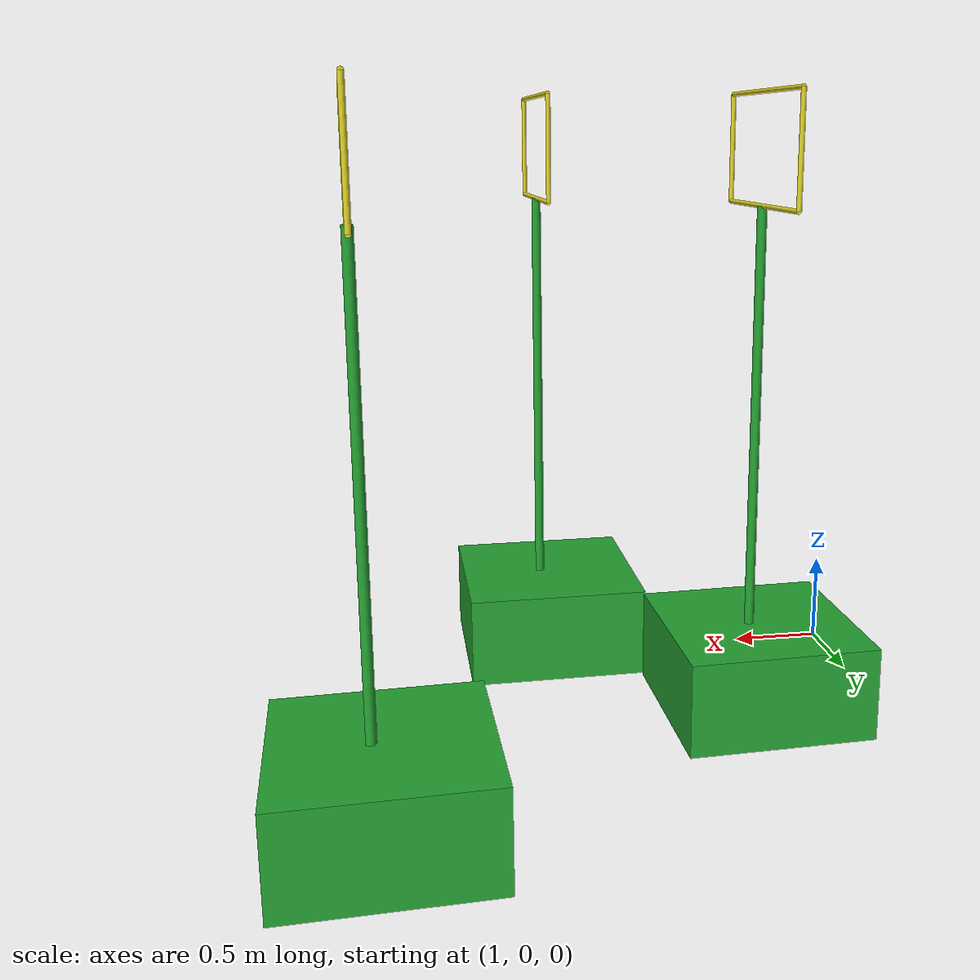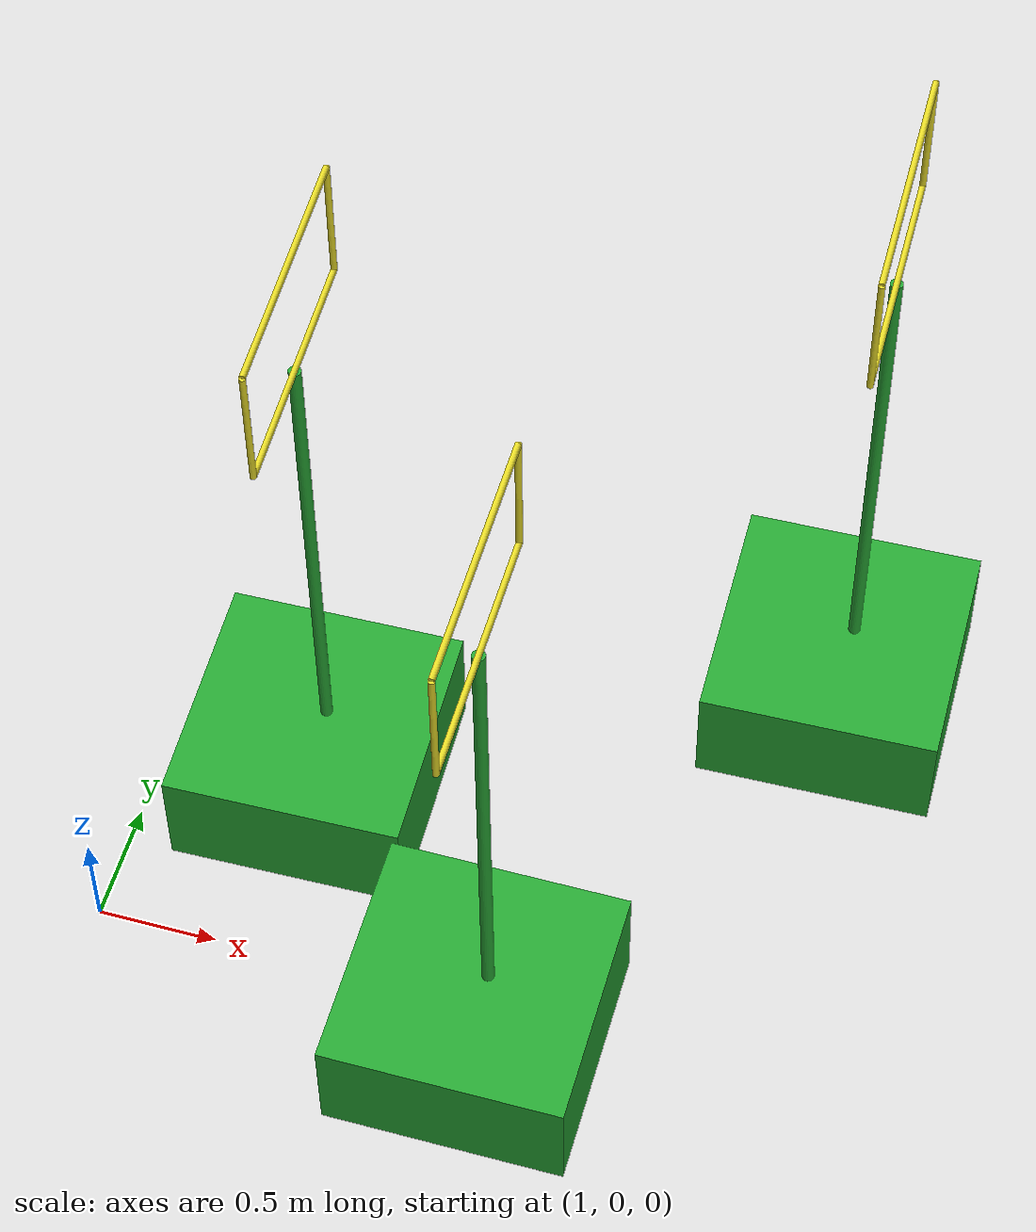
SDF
<sdf version="1.6">
 <world name="vrc_task_1">
  <model name="flipkart_hoop">
   <link name="link_0">
    <inertial>
     <mass>0.530306</mass>
     <inertia>
      <ixx>0.0566207</ixx>
      <ixy>0</ixy>
      <ixz>0</ixz>
      <iyy>0.0566207</iyy>
      <iyz>0</iyz>
      <izz>0.0883844</izz>
     </inertia>
    </inertial>
    <pose>0.141833 0.667401 -1.68595 0 -0 0</pose>
    <visual name="visual">
     <geometry><box><size>1 1 0.5</size></box></geometry>
     <material>
      <lighting>1</lighting>
      <script><uri>file://media/materials/scripts/gazebo.material</uri><name>Gazebo/Green</name></script>
      <shader type="pixel"/>
      <emissive>0 0 0 1</emissive>
     </material>
    </visual>
    <collision name="collision">
     <geometry><box><size>1 1 0.5</size></box></geometry>
     <surface>
      <friction>
       <ode><mu>1</mu><mu2>1</mu2><fdir1>0 0 0</fdir1><slip1>0</slip1><slip2>0</slip2></ode>
       <torsional>
        <coefficient>1</coefficient>
        <patch_radius>0</patch_radius>
        <surface_radius>0</surface_radius>
        <use_patch_radius>1</use_patch_radius>
        <ode><slip>0</slip></ode>
       </torsional>
      </friction>
      <bounce><restitution_coefficient>0</restitution_coefficient><threshold>1e+06</threshold></bounce>
      <contact>
       <collide_without_contact>0</collide_without_contact>
       <collide_without_contact_bitmask>1</collide_without_contact_bitmask>
       <collide_bitmask>1</collide_bitmask>
       <ode>
        <soft_cfm>0</soft_cfm>
        <soft_erp>0.2</soft_erp>
        <kp>1e+13</kp>
        <kd>1</kd>
        <max_vel>0.01</max_vel>
        <min_depth>0</min_depth>
       </ode>
       <bullet>
        <split_impulse>1</split_impulse>
        <split_impulse_penetration_threshold>-0.01</split_impulse_penetration_threshold>
        <soft_cfm>0</soft_cfm>
        <soft_erp>0.2</soft_erp>
        <kp>1e+13</kp>
        <kd>1</kd>
       </bullet>
      </contact>
     </surface>
    </collision>
   </link>
   <link name="link_1">
    <inertial>
     <mass>0.25</mass>
     <inertia>
      <ixx>0.130247</ixx>
      <ixy>0</ixy>
      <ixz>0</ixz>
      <iyy>0.130247</iyy>
      <iyz>0</iyz>
      <izz>7.813e-05</izz>
     </inertia>
    </inertial>
    <pose>0.122412 0.714194 -0.478486 0 -0 0</pose>
    <visual name="visual">
     <geometry><cylinder><radius>0.025</radius><length>2.5</length></cylinder></geometry>
     <material>
      <lighting>1</lighting>
      <script><uri>file://media/materials/scripts/gazebo.material</uri><name>Gazebo/Green</name></script>
      <shader type="pixel"/>
      <emissive>0 0 0 1</emissive>
     </material>
    </visual>
    <collision name="collision">
     <geometry><cylinder><radius>0.025</radius><length>2.5</length></cylinder></geometry>
     <surface>
      <friction>
       <ode><mu>1</mu><mu2>1</mu2><fdir1>0 0 0</fdir1><slip1>0</slip1><slip2>0</slip2></ode>
       <torsional>
        <coefficient>1</coefficient>
        <patch_radius>0</patch_radius>
        <surface_radius>0</surface_radius>
        <use_patch_radius>1</use_patch_radius>
        <ode><slip>0</slip></ode>
       </torsional>
      </friction>
      <bounce><restitution_coefficient>0</restitution_coefficient><threshold>1e+06</threshold></bounce>
      <contact>
       <collide_without_contact>0</collide_without_contact>
       <collide_without_contact_bitmask>1</collide_without_contact_bitmask>
       <collide_bitmask>1</collide_bitmask>
       <ode>
        <soft_cfm>0</soft_cfm>
        <soft_erp>0.2</soft_erp>
        <kp>1e+13</kp>
        <kd>1</kd>
        <max_vel>0.01</max_vel>
        <min_depth>0</min_depth>
       </ode>
       <bullet>
        <split_impulse>1</split_impulse>
        <split_impulse_penetration_threshold>-0.01</split_impulse_penetration_threshold>
        <soft_cfm>0</soft_cfm>
        <soft_erp>0.2</soft_erp>
        <kp>1e+13</kp>
        <kd>1</kd>
       </bullet>
      </contact>
     </surface>
    </collision>
   </link>
   <link name="link_2">
    <inertial>
     <mass>0.05</mass>
     <inertia>
      <ixx>0.00416862</ixx>
      <ixy>0</ixy>
      <ixz>0</ixz>
      <iyy>0.00416862</iyy>
      <iyz>0</iyz>
      <izz>3.91e-06</izz>
     </inertia>
    </inertial>
    <pose>0.122412 0.714194 1.32141 1.57 -0 1.57</pose>
    <visual name="visual">
     <geometry><cylinder><radius>0.0125</radius><length>1</length></cylinder></geometry>
     <material>
      <lighting>1</lighting>
      <script><uri>file://media/materials/scripts/gazebo.material</uri><name>Gazebo/Yellow</name></script>
      <shader type="pixel"/>
      <emissive>0 0 0 1</emissive>
     </material>
    </visual>
    <collision name="collision">
     <geometry><cylinder><radius>0.0125</radius><length>1</length></cylinder></geometry>
     <surface>
      <friction>
       <ode><mu>1</mu><mu2>1</mu2><fdir1>0 0 0</fdir1><slip1>0</slip1><slip2>0</slip2></ode>
       <torsional>
        <coefficient>1</coefficient>
        <patch_radius>0</patch_radius>
        <surface_radius>0</surface_radius>
        <use_patch_radius>1</use_patch_radius>
        <ode><slip>0</slip></ode>
       </torsional>
      </friction>
      <bounce><restitution_coefficient>0</restitution_coefficient><threshold>1e+06</threshold></bounce>
      <contact>
       <collide_without_contact>0</collide_without_contact>
       <collide_without_contact_bitmask>1</collide_without_contact_bitmask>
       <collide_bitmask>1</collide_bitmask>
       <ode>
        <soft_cfm>0</soft_cfm>
        <soft_erp>0.2</soft_erp>
        <kp>1e+13</kp>
        <kd>1</kd>
        <max_vel>0.01</max_vel>
        <min_depth>0</min_depth>
       </ode>
       <bullet>
        <split_impulse>1</split_impulse>
        <split_impulse_penetration_threshold>-0.01</split_impulse_penetration_threshold>
        <soft_cfm>0</soft_cfm>
        <soft_erp>0.2</soft_erp>
        <kp>1e+13</kp>
        <kd>1</kd>
       </bullet>
      </contact>
     </surface>
    </collision>
   </link>
   <link name="link_2_clone_0">
    <inertial>
     <mass>0.05</mass>
     <inertia>
      <ixx>0.00416862</ixx>
      <ixy>0</ixy>
      <ixz>0</ixz>
      <iyy>0.00416862</iyy>
      <iyz>0</iyz>
      <izz>3.91e-06</izz>
     </inertia>
    </inertial>
    <pose>0.122412 0.714194 0.771414 1.57 -0 1.57</pose>
    <visual name="visual">
     <geometry><cylinder><radius>0.0125</radius><length>1</length></cylinder></geometry>
     <material>
      <lighting>1</lighting>
      <script><uri>file://media/materials/scripts/gazebo.material</uri><name>Gazebo/Yellow</name></script>
      <shader type="pixel"/>
      <emissive>0 0 0 1</emissive>
     </material>
    </visual>
    <collision name="collision">
     <geometry><cylinder><radius>0.0125</radius><length>1</length></cylinder></geometry>
     <surface>
      <friction>
       <ode><mu>1</mu><mu2>1</mu2><fdir1>0 0 0</fdir1><slip1>0</slip1><slip2>0</slip2></ode>
       <torsional>
        <coefficient>1</coefficient>
        <patch_radius>0</patch_radius>
        <surface_radius>0</surface_radius>
        <use_patch_radius>1</use_patch_radius>
        <ode><slip>0</slip></ode>
       </torsional>
      </friction>
      <bounce><restitution_coefficient>0</restitution_coefficient><threshold>1e+06</threshold></bounce>
      <contact>
       <collide_without_contact>0</collide_without_contact>
       <collide_without_contact_bitmask>1</collide_without_contact_bitmask>
       <collide_bitmask>1</collide_bitmask>
       <ode>
        <soft_cfm>0</soft_cfm>
        <soft_erp>0.2</soft_erp>
        <kp>1e+13</kp>
        <kd>1</kd>
        <max_vel>0.01</max_vel>
        <min_depth>0</min_depth>
       </ode>
       <bullet>
        <split_impulse>1</split_impulse>
        <split_impulse_penetration_threshold>-0.01</split_impulse_penetration_threshold>
        <soft_cfm>0</soft_cfm>
        <soft_erp>0.2</soft_erp>
        <kp>1e+13</kp>
        <kd>1</kd>
       </bullet>
      </contact>
     </surface>
    </collision>
   </link>
   <link name="link_3_clone_clone">
    <inertial>
     <mass>0.025</mass>
     <inertia>
      <ixx>0.00063118</ixx>
      <ixy>0</ixy>
      <ixz>0</ixz>
      <iyy>0.00063118</iyy>
      <iyz>0</iyz>
      <izz>1.95e-06</izz>
     </inertia>
    </inertial>
    <pose>-0.377588 0.714194 1.04641 8e-06 -0 8e-06</pose>
    <visual name="visual">
     <geometry><cylinder><radius>0.0125</radius><length>0.55</length></cylinder></geometry>
     <material>
      <lighting>1</lighting>
      <script><uri>file://media/materials/scripts/gazebo.material</uri><name>Gazebo/Yellow</name></script>
      <shader type="pixel"/>
      <emissive>0 0 0 1</emissive>
     </material>
    </visual>
    <collision name="collision">
     <geometry><cylinder><radius>0.0125</radius><length>0.55</length></cylinder></geometry>
     <surface>
      <friction>
       <ode><mu>1</mu><mu2>1</mu2><fdir1>0 0 0</fdir1><slip1>0</slip1><slip2>0</slip2></ode>
       <torsional>
        <coefficient>1</coefficient>
        <patch_radius>0</patch_radius>
        <surface_radius>0</surface_radius>
        <use_patch_radius>1</use_patch_radius>
        <ode><slip>0</slip></ode>
       </torsional>
      </friction>
      <bounce><restitution_coefficient>0</restitution_coefficient><threshold>1e+06</threshold></bounce>
      <contact>
       <collide_without_contact>0</collide_without_contact>
       <collide_without_contact_bitmask>1</collide_without_contact_bitmask>
       <collide_bitmask>1</collide_bitmask>
       <ode>
        <soft_cfm>0</soft_cfm>
        <soft_erp>0.2</soft_erp>
        <kp>1e+13</kp>
        <kd>1</kd>
        <max_vel>0.01</max_vel>
        <min_depth>0</min_depth>
       </ode>
       <bullet>
        <split_impulse>1</split_impulse>
        <split_impulse_penetration_threshold>-0.01</split_impulse_penetration_threshold>
        <soft_cfm>0</soft_cfm>
        <soft_erp>0.2</soft_erp>
        <kp>1e+13</kp>
        <kd>1</kd>
       </bullet>
      </contact>
     </surface>
    </collision>
   </link>
   <link name="link_3_clone_clone_clone">
    <inertial>
     <mass>0.025</mass>
     <inertia>
      <ixx>0.00063118</ixx>
      <ixy>0</ixy>
      <ixz>0</ixz>
      <iyy>0.00063118</iyy>
      <iyz>0</iyz>
      <izz>1.95e-06</izz>
     </inertia>
    </inertial>
    <pose>0.622412 0.714194 1.04641 5.7e-05 -0 5.7e-05</pose>
    <visual name="visual">
     <geometry><cylinder><radius>0.0125</radius><length>0.55</length></cylinder></geometry>
     <material>
      <lighting>1</lighting>
      <script><uri>file://media/materials/scripts/gazebo.material</uri><name>Gazebo/Yellow</name></script>
      <shader type="pixel"/>
      <emissive>0 0 0 1</emissive>
     </material>
    </visual>
    <collision name="collision">
     <geometry><cylinder><radius>0.0125</radius><length>0.55</length></cylinder></geometry>
     <surface>
      <friction>
       <ode><mu>1</mu><mu2>1</mu2><fdir1>0 0 0</fdir1><slip1>0</slip1><slip2>0</slip2></ode>
       <torsional>
        <coefficient>1</coefficient>
        <patch_radius>0</patch_radius>
        <surface_radius>0</surface_radius>
        <use_patch_radius>1</use_patch_radius>
        <ode><slip>0</slip></ode>
       </torsional>
      </friction>
      <bounce><restitution_coefficient>0</restitution_coefficient><threshold>1e+06</threshold></bounce>
      <contact>
       <collide_without_contact>0</collide_without_contact>
       <collide_without_contact_bitmask>1</collide_without_contact_bitmask>
       <collide_bitmask>1</collide_bitmask>
       <ode>
        <soft_cfm>0</soft_cfm>
        <soft_erp>0.2</soft_erp>
        <kp>1e+13</kp>
        <kd>1</kd>
        <max_vel>0.01</max_vel>
        <min_depth>0</min_depth>
       </ode>
       <bullet>
        <split_impulse>1</split_impulse>
        <split_impulse_penetration_threshold>-0.01</split_impulse_penetration_threshold>
        <soft_cfm>0</soft_cfm>
        <soft_erp>0.2</soft_erp>
        <kp>1e+13</kp>
        <kd>1</kd>
       </bullet>
      </contact>
     </surface>
    </collision>
   </link>
   <joint name="link_0_JOINT_0" type="fixed">
    <parent>link_0</parent>
    <child>link_1</child>
    <physics>
     <ode><limit><cfm>0</cfm><erp>0.2</erp></limit><suspension><cfm>0</cfm><erp>0.2</erp></suspension></ode>
    </physics>
   </joint>
   <joint name="link_1_JOINT_0" type="fixed">
    <parent>link_1</parent>
    <child>link_2_clone_0</child>
    <physics>
     <ode><limit><cfm>0</cfm><erp>0.2</erp></limit><suspension><cfm>0</cfm><erp>0.2</erp></suspension></ode>
    </physics>
   </joint>
   <joint name="link_2_JOINT_2" type="fixed">
    <parent>link_2</parent>
    <child>link_3_clone_clone_clone</child>
    <physics>
     <ode><limit><cfm>0</cfm><erp>0.2</erp></limit><suspension><cfm>0</cfm><erp>0.2</erp></suspension></ode>
    </physics>
   </joint>
   <joint name="link_2_clone_0_JOINT_4" type="fixed">
    <parent>link_2_clone_0</parent>
    <child>link_3_clone_clone</child>
    <physics>
     <ode><limit><cfm>0</cfm><erp>0.2</erp></limit><suspension><cfm>0</cfm><erp>0.2</erp></suspension></ode>
    </physics>
   </joint>
   <joint name="link_3_clone_clone_JOINT_1" type="fixed">
    <parent>link_3_clone_clone</parent>
    <child>link_2</child>
    <physics>
     <ode><limit><cfm>0</cfm><erp>0.2</erp></limit><suspension><cfm>0</cfm><erp>0.2</erp></suspension></ode>
    </physics>
   </joint>
   <joint name="link_3_clone_clone_clone_JOINT_3" type="fixed">
    <parent>link_3_clone_clone_clone</parent>
    <child>link_2_clone_0</child>
    <physics>
     <ode><limit><cfm>0</cfm><erp>0.2</erp></limit><suspension><cfm>0</cfm><erp>0.2</erp></suspension></ode>
    </physics>
   </joint>
   <static>0</static>
   <pose>3.00055 2.00101 1.93595 0 -1e-05 -1.5425</pose>
  </model>
  <model name="flipkart_hoop_clone_11">
   <link name="link_0">
    <inertial>
     <mass>0.530306</mass>
     <inertia>
      <ixx>0.0566207</ixx>
      <ixy>0</ixy>
      <ixz>0</ixz>
      <iyy>0.0566207</iyy>
      <iyz>0</iyz>
      <izz>0.0883844</izz>
     </inertia>
    </inertial>
    <pose>0.141833 0.667401 -1.68595 0 -0 0</pose>
    <visual name="visual">
     <geometry><box><size>1 1 0.5</size></box></geometry>
     <material>
      <lighting>1</lighting>
      <script><uri>file://media/materials/scripts/gazebo.material</uri><name>Gazebo/Green</name></script>
      <shader type="pixel"/>
      <emissive>0 0 0 1</emissive>
     </material>
    </visual>
    <collision name="collision">
     <geometry><box><size>1 1 0.5</size></box></geometry>
     <surface>
      <friction>
       <ode><mu>1</mu><mu2>1</mu2><fdir1>0 0 0</fdir1><slip1>0</slip1><slip2>0</slip2></ode>
       <torsional>
        <coefficient>1</coefficient>
        <patch_radius>0</patch_radius>
        <surface_radius>0</surface_radius>
        <use_patch_radius>1</use_patch_radius>
        <ode><slip>0</slip></ode>
       </torsional>
      </friction>
      <bounce><restitution_coefficient>0</restitution_coefficient><threshold>1e+06</threshold></bounce>
      <contact>
       <collide_without_contact>0</collide_without_contact>
       <collide_without_contact_bitmask>1</collide_without_contact_bitmask>
       <collide_bitmask>1</collide_bitmask>
       <ode>
        <soft_cfm>0</soft_cfm>
        <soft_erp>0.2</soft_erp>
        <kp>1e+13</kp>
        <kd>1</kd>
        <max_vel>0.01</max_vel>
        <min_depth>0</min_depth>
       </ode>
       <bullet>
        <split_impulse>1</split_impulse>
        <split_impulse_penetration_threshold>-0.01</split_impulse_penetration_threshold>
        <soft_cfm>0</soft_cfm>
        <soft_erp>0.2</soft_erp>
        <kp>1e+13</kp>
        <kd>1</kd>
       </bullet>
      </contact>
     </surface>
    </collision>
   </link>
   <link name="link_1">
    <inertial>
     <mass>0.25</mass>
     <inertia>
      <ixx>0.130247</ixx>
      <ixy>0</ixy>
      <ixz>0</ixz>
      <iyy>0.130247</iyy>
      <iyz>0</iyz>
      <izz>7.813e-05</izz>
     </inertia>
    </inertial>
    <pose>0.122412 0.714194 -0.478486 0 -0 0</pose>
    <visual name="visual">
     <geometry><cylinder><radius>0.025</radius><length>2.5</length></cylinder></geometry>
     <material>
      <lighting>1</lighting>
      <script><uri>file://media/materials/scripts/gazebo.material</uri><name>Gazebo/Green</name></script>
      <shader type="pixel"/>
      <emissive>0 0 0 1</emissive>
     </material>
    </visual>
    <collision name="collision">
     <geometry><cylinder><radius>0.025</radius><length>2.5</length></cylinder></geometry>
     <surface>
      <friction>
       <ode><mu>1</mu><mu2>1</mu2><fdir1>0 0 0</fdir1><slip1>0</slip1><slip2>0</slip2></ode>
       <torsional>
        <coefficient>1</coefficient>
        <patch_radius>0</patch_radius>
        <surface_radius>0</surface_radius>
        <use_patch_radius>1</use_patch_radius>
        <ode><slip>0</slip></ode>
       </torsional>
      </friction>
      <bounce><restitution_coefficient>0</restitution_coefficient><threshold>1e+06</threshold></bounce>
      <contact>
       <collide_without_contact>0</collide_without_contact>
       <collide_without_contact_bitmask>1</collide_without_contact_bitmask>
       <collide_bitmask>1</collide_bitmask>
       <ode>
        <soft_cfm>0</soft_cfm>
        <soft_erp>0.2</soft_erp>
        <kp>1e+13</kp>
        <kd>1</kd>
        <max_vel>0.01</max_vel>
        <min_depth>0</min_depth>
       </ode>
       <bullet>
        <split_impulse>1</split_impulse>
        <split_impulse_penetration_threshold>-0.01</split_impulse_penetration_threshold>
        <soft_cfm>0</soft_cfm>
        <soft_erp>0.2</soft_erp>
        <kp>1e+13</kp>
        <kd>1</kd>
       </bullet>
      </contact>
     </surface>
    </collision>
   </link>
   <link name="link_2">
    <inertial>
     <mass>0.05</mass>
     <inertia>
      <ixx>0.00416862</ixx>
      <ixy>0</ixy>
      <ixz>0</ixz>
      <iyy>0.00416862</iyy>
      <iyz>0</iyz>
      <izz>3.91e-06</izz>
     </inertia>
    </inertial>
    <pose>0.122412 0.714194 1.32141 1.57 -0 1.57</pose>
    <visual name="visual">
     <geometry><cylinder><radius>0.0125</radius><length>1</length></cylinder></geometry>
     <material>
      <lighting>1</lighting>
      <script><uri>file://media/materials/scripts/gazebo.material</uri><name>Gazebo/Yellow</name></script>
      <shader type="pixel"/>
      <emissive>0 0 0 1</emissive>
     </material>
    </visual>
    <collision name="collision">
     <geometry><cylinder><radius>0.0125</radius><length>1</length></cylinder></geometry>
     <surface>
      <friction>
       <ode><mu>1</mu><mu2>1</mu2><fdir1>0 0 0</fdir1><slip1>0</slip1><slip2>0</slip2></ode>
       <torsional>
        <coefficient>1</coefficient>
        <patch_radius>0</patch_radius>
        <surface_radius>0</surface_radius>
        <use_patch_radius>1</use_patch_radius>
        <ode><slip>0</slip></ode>
       </torsional>
      </friction>
      <bounce><restitution_coefficient>0</restitution_coefficient><threshold>1e+06</threshold></bounce>
      <contact>
       <collide_without_contact>0</collide_without_contact>
       <collide_without_contact_bitmask>1</collide_without_contact_bitmask>
       <collide_bitmask>1</collide_bitmask>
       <ode>
        <soft_cfm>0</soft_cfm>
        <soft_erp>0.2</soft_erp>
        <kp>1e+13</kp>
        <kd>1</kd>
        <max_vel>0.01</max_vel>
        <min_depth>0</min_depth>
       </ode>
       <bullet>
        <split_impulse>1</split_impulse>
        <split_impulse_penetration_threshold>-0.01</split_impulse_penetration_threshold>
        <soft_cfm>0</soft_cfm>
        <soft_erp>0.2</soft_erp>
        <kp>1e+13</kp>
        <kd>1</kd>
       </bullet>
      </contact>
     </surface>
    </collision>
   </link>
   <link name="link_2_clone_0">
    <inertial>
     <mass>0.05</mass>
     <inertia>
      <ixx>0.00416862</ixx>
      <ixy>0</ixy>
      <ixz>0</ixz>
      <iyy>0.00416862</iyy>
      <iyz>0</iyz>
      <izz>3.91e-06</izz>
     </inertia>
    </inertial>
    <pose>0.122412 0.714194 0.771414 1.57 -0 1.57</pose>
    <visual name="visual">
     <geometry><cylinder><radius>0.0125</radius><length>1</length></cylinder></geometry>
     <material>
      <lighting>1</lighting>
      <script><uri>file://media/materials/scripts/gazebo.material</uri><name>Gazebo/Yellow</name></script>
      <shader type="pixel"/>
      <emissive>0 0 0 1</emissive>
     </material>
    </visual>
    <collision name="collision">
     <geometry><cylinder><radius>0.0125</radius><length>1</length></cylinder></geometry>
     <surface>
      <friction>
       <ode><mu>1</mu><mu2>1</mu2><fdir1>0 0 0</fdir1><slip1>0</slip1><slip2>0</slip2></ode>
       <torsional>
        <coefficient>1</coefficient>
        <patch_radius>0</patch_radius>
        <surface_radius>0</surface_radius>
        <use_patch_radius>1</use_patch_radius>
        <ode><slip>0</slip></ode>
       </torsional>
      </friction>
      <bounce><restitution_coefficient>0</restitution_coefficient><threshold>1e+06</threshold></bounce>
      <contact>
       <collide_without_contact>0</collide_without_contact>
       <collide_without_contact_bitmask>1</collide_without_contact_bitmask>
       <collide_bitmask>1</collide_bitmask>
       <ode>
        <soft_cfm>0</soft_cfm>
        <soft_erp>0.2</soft_erp>
        <kp>1e+13</kp>
        <kd>1</kd>
        <max_vel>0.01</max_vel>
        <min_depth>0</min_depth>
       </ode>
       <bullet>
        <split_impulse>1</split_impulse>
        <split_impulse_penetration_threshold>-0.01</split_impulse_penetration_threshold>
        <soft_cfm>0</soft_cfm>
        <soft_erp>0.2</soft_erp>
        <kp>1e+13</kp>
        <kd>1</kd>
       </bullet>
      </contact>
     </surface>
    </collision>
   </link>
   <link name="link_3_clone_clone">
    <inertial>
     <mass>0.025</mass>
     <inertia>
      <ixx>0.00063118</ixx>
      <ixy>0</ixy>
      <ixz>0</ixz>
      <iyy>0.00063118</iyy>
      <iyz>0</iyz>
      <izz>1.95e-06</izz>
     </inertia>
    </inertial>
    <pose>-0.377588 0.714194 1.04641 8e-06 -0 8e-06</pose>
    <visual name="visual">
     <geometry><cylinder><radius>0.0125</radius><length>0.55</length></cylinder></geometry>
     <material>
      <lighting>1</lighting>
      <script><uri>file://media/materials/scripts/gazebo.material</uri><name>Gazebo/Yellow</name></script>
      <shader type="pixel"/>
      <emissive>0 0 0 1</emissive>
     </material>
    </visual>
    <collision name="collision">
     <geometry><cylinder><radius>0.0125</radius><length>0.55</length></cylinder></geometry>
     <surface>
      <friction>
       <ode><mu>1</mu><mu2>1</mu2><fdir1>0 0 0</fdir1><slip1>0</slip1><slip2>0</slip2></ode>
       <torsional>
        <coefficient>1</coefficient>
        <patch_radius>0</patch_radius>
        <surface_radius>0</surface_radius>
        <use_patch_radius>1</use_patch_radius>
        <ode><slip>0</slip></ode>
       </torsional>
      </friction>
      <bounce><restitution_coefficient>0</restitution_coefficient><threshold>1e+06</threshold></bounce>
      <contact>
       <collide_without_contact>0</collide_without_contact>
       <collide_without_contact_bitmask>1</collide_without_contact_bitmask>
       <collide_bitmask>1</collide_bitmask>
       <ode>
        <soft_cfm>0</soft_cfm>
        <soft_erp>0.2</soft_erp>
        <kp>1e+13</kp>
        <kd>1</kd>
        <max_vel>0.01</max_vel>
        <min_depth>0</min_depth>
       </ode>
       <bullet>
        <split_impulse>1</split_impulse>
        <split_impulse_penetration_threshold>-0.01</split_impulse_penetration_threshold>
        <soft_cfm>0</soft_cfm>
        <soft_erp>0.2</soft_erp>
        <kp>1e+13</kp>
        <kd>1</kd>
       </bullet>
      </contact>
     </surface>
    </collision>
   </link>
   <link name="link_3_clone_clone_clone">
    <inertial>
     <mass>0.025</mass>
     <inertia>
      <ixx>0.00063118</ixx>
      <ixy>0</ixy>
      <ixz>0</ixz>
      <iyy>0.00063118</iyy>
      <iyz>0</iyz>
      <izz>1.95e-06</izz>
     </inertia>
    </inertial>
    <pose>0.622412 0.714194 1.04641 5.7e-05 -0 5.7e-05</pose>
    <visual name="visual">
     <geometry><cylinder><radius>0.0125</radius><length>0.55</length></cylinder></geometry>
     <material>
      <lighting>1</lighting>
      <script><uri>file://media/materials/scripts/gazebo.material</uri><name>Gazebo/Yellow</name></script>
      <shader type="pixel"/>
      <emissive>0 0 0 1</emissive>
     </material>
    </visual>
    <collision name="collision">
     <geometry><cylinder><radius>0.0125</radius><length>0.55</length></cylinder></geometry>
     <surface>
      <friction>
       <ode><mu>1</mu><mu2>1</mu2><fdir1>0 0 0</fdir1><slip1>0</slip1><slip2>0</slip2></ode>
       <torsional>
        <coefficient>1</coefficient>
        <patch_radius>0</patch_radius>
        <surface_radius>0</surface_radius>
        <use_patch_radius>1</use_patch_radius>
        <ode><slip>0</slip></ode>
       </torsional>
      </friction>
      <bounce><restitution_coefficient>0</restitution_coefficient><threshold>1e+06</threshold></bounce>
      <contact>
       <collide_without_contact>0</collide_without_contact>
       <collide_without_contact_bitmask>1</collide_without_contact_bitmask>
       <collide_bitmask>1</collide_bitmask>
       <ode>
        <soft_cfm>0</soft_cfm>
        <soft_erp>0.2</soft_erp>
        <kp>1e+13</kp>
        <kd>1</kd>
        <max_vel>0.01</max_vel>
        <min_depth>0</min_depth>
       </ode>
       <bullet>
        <split_impulse>1</split_impulse>
        <split_impulse_penetration_threshold>-0.01</split_impulse_penetration_threshold>
        <soft_cfm>0</soft_cfm>
        <soft_erp>0.2</soft_erp>
        <kp>1e+13</kp>
        <kd>1</kd>
       </bullet>
      </contact>
     </surface>
    </collision>
   </link>
   <joint name="link_0_JOINT_0" type="fixed">
    <parent>link_0</parent>
    <child>link_1</child>
    <physics>
     <ode><limit><cfm>0</cfm><erp>0.2</erp></limit><suspension><cfm>0</cfm><erp>0.2</erp></suspension></ode>
    </physics>
   </joint>
   <joint name="link_1_JOINT_0" type="fixed">
    <parent>link_1</parent>
    <child>link_2_clone_0</child>
    <physics>
     <ode><limit><cfm>0</cfm><erp>0.2</erp></limit><suspension><cfm>0</cfm><erp>0.2</erp></suspension></ode>
    </physics>
   </joint>
   <joint name="link_2_JOINT_2" type="fixed">
    <parent>link_2</parent>
    <child>link_3_clone_clone_clone</child>
    <physics>
     <ode><limit><cfm>0</cfm><erp>0.2</erp></limit><suspension><cfm>0</cfm><erp>0.2</erp></suspension></ode>
    </physics>
   </joint>
   <joint name="link_2_clone_0_JOINT_4" type="fixed">
    <parent>link_2_clone_0</parent>
    <child>link_3_clone_clone</child>
    <physics>
     <ode><limit><cfm>0</cfm><erp>0.2</erp></limit><suspension><cfm>0</cfm><erp>0.2</erp></suspension></ode>
    </physics>
   </joint>
   <joint name="link_3_clone_clone_JOINT_1" type="fixed">
    <parent>link_3_clone_clone</parent>
    <child>link_2</child>
    <physics>
     <ode><limit><cfm>0</cfm><erp>0.2</erp></limit><suspension><cfm>0</cfm><erp>0.2</erp></suspension></ode>
    </physics>
   </joint>
   <joint name="link_3_clone_clone_clone_JOINT_3" type="fixed">
    <parent>link_3_clone_clone_clone</parent>
    <child>link_2_clone_0</child>
    <physics>
     <ode><limit><cfm>0</cfm><erp>0.2</erp></limit><suspension><cfm>0</cfm><erp>0.2</erp></suspension></ode>
    </physics>
   </joint>
   <static>0</static>
   <pose>2.00065 0.000666 1.9359 -0 -6.8e-05 -1.56792</pose>
  </model>
  <model name="flipkart_hoop_clone_11_clone">
   <link name="link_0">
    <inertial>
     <mass>0.530306</mass>
     <inertia>
      <ixx>0.0566207</ixx>
      <ixy>0</ixy>
      <ixz>0</ixz>
      <iyy>0.0566207</iyy>
      <iyz>0</iyz>
      <izz>0.0883844</izz>
     </inertia>
    </inertial>
    <pose>0.141833 0.667401 -1.68595 0 -0 0</pose>
    <visual name="visual">
     <geometry><box><size>1 1 0.5</size></box></geometry>
     <material>
      <lighting>1</lighting>
      <script><uri>file://media/materials/scripts/gazebo.material</uri><name>Gazebo/Green</name></script>
      <shader type="pixel"/>
      <emissive>0 0 0 1</emissive>
     </material>
    </visual>
    <collision name="collision">
     <geometry><box><size>1 1 0.5</size></box></geometry>
     <surface>
      <friction>
       <ode><mu>1</mu><mu2>1</mu2><fdir1>0 0 0</fdir1><slip1>0</slip1><slip2>0</slip2></ode>
       <torsional>
        <coefficient>1</coefficient>
        <patch_radius>0</patch_radius>
        <surface_radius>0</surface_radius>
        <use_patch_radius>1</use_patch_radius>
        <ode><slip>0</slip></ode>
       </torsional>
      </friction>
      <bounce><restitution_coefficient>0</restitution_coefficient><threshold>1e+06</threshold></bounce>
      <contact>
       <collide_without_contact>0</collide_without_contact>
       <collide_without_contact_bitmask>1</collide_without_contact_bitmask>
       <collide_bitmask>1</collide_bitmask>
       <ode>
        <soft_cfm>0</soft_cfm>
        <soft_erp>0.2</soft_erp>
        <kp>1e+13</kp>
        <kd>1</kd>
        <max_vel>0.01</max_vel>
        <min_depth>0</min_depth>
       </ode>
       <bullet>
        <split_impulse>1</split_impulse>
        <split_impulse_penetration_threshold>-0.01</split_impulse_penetration_threshold>
        <soft_cfm>0</soft_cfm>
        <soft_erp>0.2</soft_erp>
        <kp>1e+13</kp>
        <kd>1</kd>
       </bullet>
      </contact>
     </surface>
    </collision>
   </link>
   <link name="link_1">
    <inertial>
     <mass>0.25</mass>
     <inertia>
      <ixx>0.130247</ixx>
      <ixy>0</ixy>
      <ixz>0</ixz>
      <iyy>0.130247</iyy>
      <iyz>0</iyz>
      <izz>7.813e-05</izz>
     </inertia>
    </inertial>
    <pose>0.122412 0.714194 -0.478486 0 -0 0</pose>
    <visual name="visual">
     <geometry><cylinder><radius>0.025</radius><length>2.5</length></cylinder></geometry>
     <material>
      <lighting>1</lighting>
      <script><uri>file://media/materials/scripts/gazebo.material</uri><name>Gazebo/Green</name></script>
      <shader type="pixel"/>
      <emissive>0 0 0 1</emissive>
     </material>
    </visual>
    <collision name="collision">
     <geometry><cylinder><radius>0.025</radius><length>2.5</length></cylinder></geometry>
     <surface>
      <friction>
       <ode><mu>1</mu><mu2>1</mu2><fdir1>0 0 0</fdir1><slip1>0</slip1><slip2>0</slip2></ode>
       <torsional>
        <coefficient>1</coefficient>
        <patch_radius>0</patch_radius>
        <surface_radius>0</surface_radius>
        <use_patch_radius>1</use_patch_radius>
        <ode><slip>0</slip></ode>
       </torsional>
      </friction>
      <bounce><restitution_coefficient>0</restitution_coefficient><threshold>1e+06</threshold></bounce>
      <contact>
       <collide_without_contact>0</collide_without_contact>
       <collide_without_contact_bitmask>1</collide_without_contact_bitmask>
       <collide_bitmask>1</collide_bitmask>
       <ode>
        <soft_cfm>0</soft_cfm>
        <soft_erp>0.2</soft_erp>
        <kp>1e+13</kp>
        <kd>1</kd>
        <max_vel>0.01</max_vel>
        <min_depth>0</min_depth>
       </ode>
       <bullet>
        <split_impulse>1</split_impulse>
        <split_impulse_penetration_threshold>-0.01</split_impulse_penetration_threshold>
        <soft_cfm>0</soft_cfm>
        <soft_erp>0.2</soft_erp>
        <kp>1e+13</kp>
        <kd>1</kd>
       </bullet>
      </contact>
     </surface>
    </collision>
   </link>
   <link name="link_2">
    <inertial>
     <mass>0.05</mass>
     <inertia>
      <ixx>0.00416862</ixx>
      <ixy>0</ixy>
      <ixz>0</ixz>
      <iyy>0.00416862</iyy>
      <iyz>0</iyz>
      <izz>3.91e-06</izz>
     </inertia>
    </inertial>
    <pose>0.122412 0.714194 1.32141 1.57 -0 1.57</pose>
    <visual name="visual">
     <geometry><cylinder><radius>0.0125</radius><length>1</length></cylinder></geometry>
     <material>
      <lighting>1</lighting>
      <script><uri>file://media/materials/scripts/gazebo.material</uri><name>Gazebo/Yellow</name></script>
      <shader type="pixel"/>
      <emissive>0 0 0 1</emissive>
     </material>
    </visual>
    <collision name="collision">
     <geometry><cylinder><radius>0.0125</radius><length>1</length></cylinder></geometry>
     <surface>
      <friction>
       <ode><mu>1</mu><mu2>1</mu2><fdir1>0 0 0</fdir1><slip1>0</slip1><slip2>0</slip2></ode>
       <torsional>
        <coefficient>1</coefficient>
        <patch_radius>0</patch_radius>
        <surface_radius>0</surface_radius>
        <use_patch_radius>1</use_patch_radius>
        <ode><slip>0</slip></ode>
       </torsional>
      </friction>
      <bounce><restitution_coefficient>0</restitution_coefficient><threshold>1e+06</threshold></bounce>
      <contact>
       <collide_without_contact>0</collide_without_contact>
       <collide_without_contact_bitmask>1</collide_without_contact_bitmask>
       <collide_bitmask>1</collide_bitmask>
       <ode>
        <soft_cfm>0</soft_cfm>
        <soft_erp>0.2</soft_erp>
        <kp>1e+13</kp>
        <kd>1</kd>
        <max_vel>0.01</max_vel>
        <min_depth>0</min_depth>
       </ode>
       <bullet>
        <split_impulse>1</split_impulse>
        <split_impulse_penetration_threshold>-0.01</split_impulse_penetration_threshold>
        <soft_cfm>0</soft_cfm>
        <soft_erp>0.2</soft_erp>
        <kp>1e+13</kp>
        <kd>1</kd>
       </bullet>
      </contact>
     </surface>
    </collision>
   </link>
   <link name="link_2_clone_0">
    <inertial>
     <mass>0.05</mass>
     <inertia>
      <ixx>0.00416862</ixx>
      <ixy>0</ixy>
      <ixz>0</ixz>
      <iyy>0.00416862</iyy>
      <iyz>0</iyz>
      <izz>3.91e-06</izz>
     </inertia>
    </inertial>
    <pose>0.122412 0.714194 0.771414 1.57 -0 1.57</pose>
    <visual name="visual">
     <geometry><cylinder><radius>0.0125</radius><length>1</length></cylinder></geometry>
     <material>
      <lighting>1</lighting>
      <script><uri>file://media/materials/scripts/gazebo.material</uri><name>Gazebo/Yellow</name></script>
      <shader type="pixel"/>
      <emissive>0 0 0 1</emissive>
     </material>
    </visual>
    <collision name="collision">
     <geometry><cylinder><radius>0.0125</radius><length>1</length></cylinder></geometry>
     <surface>
      <friction>
       <ode><mu>1</mu><mu2>1</mu2><fdir1>0 0 0</fdir1><slip1>0</slip1><slip2>0</slip2></ode>
       <torsional>
        <coefficient>1</coefficient>
        <patch_radius>0</patch_radius>
        <surface_radius>0</surface_radius>
        <use_patch_radius>1</use_patch_radius>
        <ode><slip>0</slip></ode>
       </torsional>
      </friction>
      <bounce><restitution_coefficient>0</restitution_coefficient><threshold>1e+06</threshold></bounce>
      <contact>
       <collide_without_contact>0</collide_without_contact>
       <collide_without_contact_bitmask>1</collide_without_contact_bitmask>
       <collide_bitmask>1</collide_bitmask>
       <ode>
        <soft_cfm>0</soft_cfm>
        <soft_erp>0.2</soft_erp>
        <kp>1e+13</kp>
        <kd>1</kd>
        <max_vel>0.01</max_vel>
        <min_depth>0</min_depth>
       </ode>
       <bullet>
        <split_impulse>1</split_impulse>
        <split_impulse_penetration_threshold>-0.01</split_impulse_penetration_threshold>
        <soft_cfm>0</soft_cfm>
        <soft_erp>0.2</soft_erp>
        <kp>1e+13</kp>
        <kd>1</kd>
       </bullet>
      </contact>
     </surface>
    </collision>
   </link>
   <link name="link_3_clone_clone">
    <inertial>
     <mass>0.025</mass>
     <inertia>
      <ixx>0.00063118</ixx>
      <ixy>0</ixy>
      <ixz>0</ixz>
      <iyy>0.00063118</iyy>
      <iyz>0</iyz>
      <izz>1.95e-06</izz>
     </inertia>
    </inertial>
    <pose>-0.377588 0.714194 1.04641 8e-06 -0 8e-06</pose>
    <visual name="visual">
     <geometry><cylinder><radius>0.0125</radius><length>0.55</length></cylinder></geometry>
     <material>
      <lighting>1</lighting>
      <script><uri>file://media/materials/scripts/gazebo.material</uri><name>Gazebo/Yellow</name></script>
      <shader type="pixel"/>
      <emissive>0 0 0 1</emissive>
     </material>
    </visual>
    <collision name="collision">
     <geometry><cylinder><radius>0.0125</radius><length>0.55</length></cylinder></geometry>
     <surface>
      <friction>
       <ode><mu>1</mu><mu2>1</mu2><fdir1>0 0 0</fdir1><slip1>0</slip1><slip2>0</slip2></ode>
       <torsional>
        <coefficient>1</coefficient>
        <patch_radius>0</patch_radius>
        <surface_radius>0</surface_radius>
        <use_patch_radius>1</use_patch_radius>
        <ode><slip>0</slip></ode>
       </torsional>
      </friction>
      <bounce><restitution_coefficient>0</restitution_coefficient><threshold>1e+06</threshold></bounce>
      <contact>
       <collide_without_contact>0</collide_without_contact>
       <collide_without_contact_bitmask>1</collide_without_contact_bitmask>
       <collide_bitmask>1</collide_bitmask>
       <ode>
        <soft_cfm>0</soft_cfm>
        <soft_erp>0.2</soft_erp>
        <kp>1e+13</kp>
        <kd>1</kd>
        <max_vel>0.01</max_vel>
        <min_depth>0</min_depth>
       </ode>
       <bullet>
        <split_impulse>1</split_impulse>
        <split_impulse_penetration_threshold>-0.01</split_impulse_penetration_threshold>
        <soft_cfm>0</soft_cfm>
        <soft_erp>0.2</soft_erp>
        <kp>1e+13</kp>
        <kd>1</kd>
       </bullet>
      </contact>
     </surface>
    </collision>
   </link>
   <link name="link_3_clone_clone_clone">
    <inertial>
     <mass>0.025</mass>
     <inertia>
      <ixx>0.00063118</ixx>
      <ixy>0</ixy>
      <ixz>0</ixz>
      <iyy>0.00063118</iyy>
      <iyz>0</iyz>
      <izz>1.95e-06</izz>
     </inertia>
    </inertial>
    <pose>0.622412 0.714194 1.04641 5.7e-05 -0 5.7e-05</pose>
    <visual name="visual">
     <geometry><cylinder><radius>0.0125</radius><length>0.55</length></cylinder></geometry>
     <material>
      <lighting>1</lighting>
      <script><uri>file://media/materials/scripts/gazebo.material</uri><name>Gazebo/Yellow</name></script>
      <shader type="pixel"/>
      <emissive>0 0 0 1</emissive>
     </material>
    </visual>
    <collision name="collision">
     <geometry><cylinder><radius>0.0125</radius><length>0.55</length></cylinder></geometry>
     <surface>
      <friction>
       <ode><mu>1</mu><mu2>1</mu2><fdir1>0 0 0</fdir1><slip1>0</slip1><slip2>0</slip2></ode>
       <torsional>
        <coefficient>1</coefficient>
        <patch_radius>0</patch_radius>
        <surface_radius>0</surface_radius>
        <use_patch_radius>1</use_patch_radius>
        <ode><slip>0</slip></ode>
       </torsional>
      </friction>
      <bounce><restitution_coefficient>0</restitution_coefficient><threshold>1e+06</threshold></bounce>
      <contact>
       <collide_without_contact>0</collide_without_contact>
       <collide_without_contact_bitmask>1</collide_without_contact_bitmask>
       <collide_bitmask>1</collide_bitmask>
       <ode>
        <soft_cfm>0</soft_cfm>
        <soft_erp>0.2</soft_erp>
        <kp>1e+13</kp>
        <kd>1</kd>
        <max_vel>0.01</max_vel>
        <min_depth>0</min_depth>
       </ode>
       <bullet>
        <split_impulse>1</split_impulse>
        <split_impulse_penetration_threshold>-0.01</split_impulse_penetration_threshold>
        <soft_cfm>0</soft_cfm>
        <soft_erp>0.2</soft_erp>
        <kp>1e+13</kp>
        <kd>1</kd>
       </bullet>
      </contact>
     </surface>
    </collision>
   </link>
   <joint name="link_0_JOINT_0" type="fixed">
    <parent>link_0</parent>
    <child>link_1</child>
    <physics>
     <ode><limit><cfm>0</cfm><erp>0.2</erp></limit><suspension><cfm>0</cfm><erp>0.2</erp></suspension></ode>
    </physics>
   </joint>
   <joint name="link_1_JOINT_0" type="fixed">
    <parent>link_1</parent>
    <child>link_2_clone_0</child>
    <physics>
     <ode><limit><cfm>0</cfm><erp>0.2</erp></limit><suspension><cfm>0</cfm><erp>0.2</erp></suspension></ode>
    </physics>
   </joint>
   <joint name="link_2_JOINT_2" type="fixed">
    <parent>link_2</parent>
    <child>link_3_clone_clone_clone</child>
    <physics>
     <ode><limit><cfm>0</cfm><erp>0.2</erp></limit><suspension><cfm>0</cfm><erp>0.2</erp></suspension></ode>
    </physics>
   </joint>
   <joint name="link_2_clone_0_JOINT_4" type="fixed">
    <parent>link_2_clone_0</parent>
    <child>link_3_clone_clone</child>
    <physics>
     <ode><limit><cfm>0</cfm><erp>0.2</erp></limit><suspension><cfm>0</cfm><erp>0.2</erp></suspension></ode>
    </physics>
   </joint>
   <joint name="link_3_clone_clone_JOINT_1" type="fixed">
    <parent>link_3_clone_clone</parent>
    <child>link_2</child>
    <physics>
     <ode><limit><cfm>0</cfm><erp>0.2</erp></limit><suspension><cfm>0</cfm><erp>0.2</erp></suspension></ode>
    </physics>
   </joint>
   <joint name="link_3_clone_clone_clone_JOINT_3" type="fixed">
    <parent>link_3_clone_clone_clone</parent>
    <child>link_2_clone_0</child>
    <physics>
     <ode><limit><cfm>0</cfm><erp>0.2</erp></limit><suspension><cfm>0</cfm><erp>0.2</erp></suspension></ode>
    </physics>
   </joint>
   <static>0</static>
   <pose>1.00061 0.999585 1.93595 0 9e-06 -1.54555</pose>
  </model>
 </world>
</sdf>
